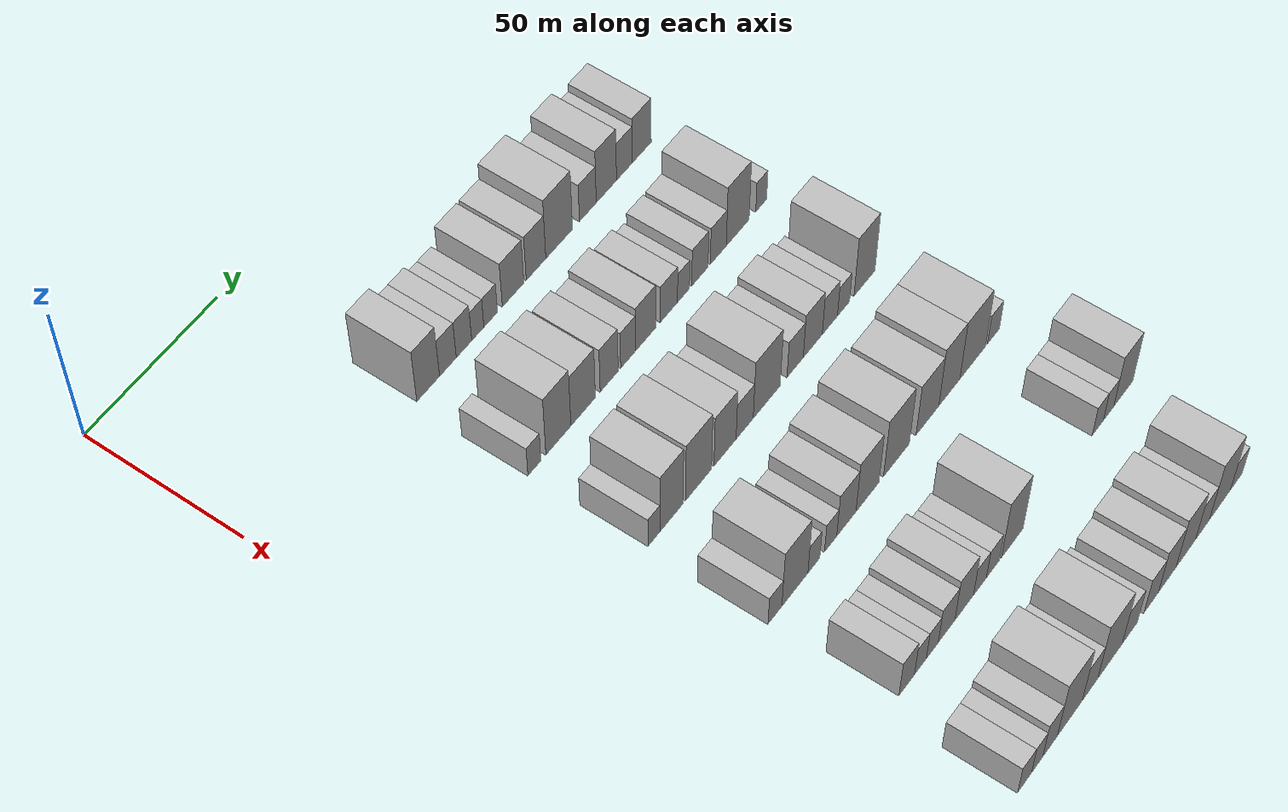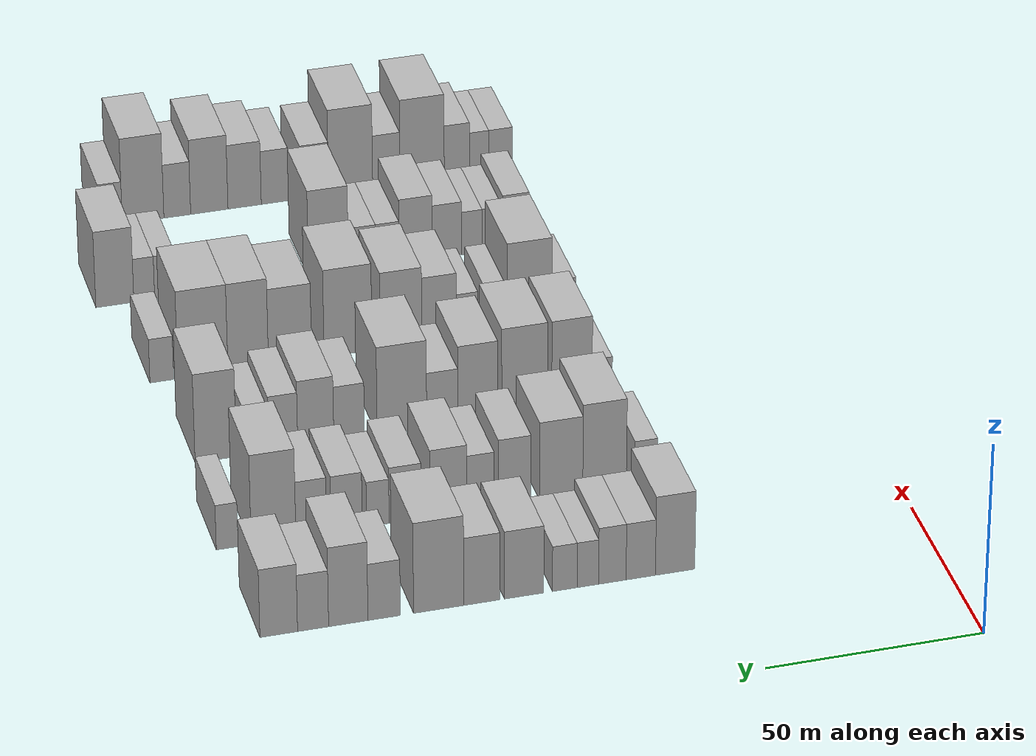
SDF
<sdf version="1.6">
 <world name="default">
  <model name="building_70">
   <static>1</static>
   <pose>50.0000 58.6767 0 0.000000 0.000000 0.000000</pose>
   <link name="link">
    <pose>0 0 10.50 0 0 0</pose>
    <collision name="collision"><geometry><box><size>20.0000 9.0922 21.0000</size></box></geometry></collision>
    <visual name="visual">
     <cast_shadows>0</cast_shadows>
     <geometry><box><size>20.0000 9.0922 21.0000</size></box></geometry>
     <material>
      <script>
       <uri>model://HANNAS_wall/materials/scripts</uri>
       <uri>model://HANNAS_wall/materials/textures</uri>
       <name>vrc/HANNAS_wall</name>
      </script>
     </material>
    </visual>
   </link>
  </model>
  <model name="building_71">
   <static>1</static>
   <pose>50.0000 66.6062 0 0.000000 0.000000 0.000000</pose>
   <link name="link">
    <pose>0 0 7.50 0 0 0</pose>
    <collision name="collision"><geometry><box><size>20.0000 6.7668 15.0000</size></box></geometry></collision>
    <visual name="visual">
     <cast_shadows>0</cast_shadows>
     <geometry><box><size>20.0000 6.7668 15.0000</size></box></geometry>
     <material>
      <script>
       <uri>model://HANNAS_wall/materials/scripts</uri>
       <uri>model://HANNAS_wall/materials/textures</uri>
       <name>vrc/HANNAS_wall</name>
      </script>
     </material>
    </visual>
   </link>
  </model>
  <model name="building_72">
   <static>1</static>
   <pose>50.0000 73.1449 0 0.000000 0.000000 0.000000</pose>
   <link name="link">
    <pose>0 0 7.50 0 0 0</pose>
    <collision name="collision"><geometry><box><size>20.0000 6.3106 15.0000</size></box></geometry></collision>
    <visual name="visual">
     <cast_shadows>0</cast_shadows>
     <geometry><box><size>20.0000 6.3106 15.0000</size></box></geometry>
     <material>
      <script>
       <uri>model://HANNAS_wall/materials/scripts</uri>
       <uri>model://HANNAS_wall/materials/textures</uri>
       <name>vrc/HANNAS_wall</name>
      </script>
     </material>
    </visual>
   </link>
  </model>
  <model name="building_73">
   <static>1</static>
   <pose>50.0000 78.7843 0 0.000000 0.000000 0.000000</pose>
   <link name="link">
    <pose>0 0 6.00 0 0 0</pose>
    <collision name="collision"><geometry><box><size>20.0000 4.9681 12.0000</size></box></geometry></collision>
    <visual name="visual">
     <cast_shadows>0</cast_shadows>
     <geometry><box><size>20.0000 4.9681 12.0000</size></box></geometry>
     <material>
      <script>
       <uri>model://HANNAS_wall/materials/scripts</uri>
       <uri>model://HANNAS_wall/materials/textures</uri>
       <name>vrc/HANNAS_wall</name>
      </script>
     </material>
    </visual>
   </link>
  </model>
  <model name="building_74">
   <static>1</static>
   <pose>50.0000 84.0852 0 0.000000 0.000000 0.000000</pose>
   <link name="link">
    <pose>0 0 6.00 0 0 0</pose>
    <collision name="collision"><geometry><box><size>20.0000 5.6336 12.0000</size></box></geometry></collision>
    <visual name="visual">
     <cast_shadows>0</cast_shadows>
     <geometry><box><size>20.0000 5.6336 12.0000</size></box></geometry>
     <material>
      <script>
       <uri>model://HANNAS_wall/materials/scripts</uri>
       <uri>model://HANNAS_wall/materials/textures</uri>
       <name>vrc/HANNAS_wall</name>
      </script>
     </material>
    </visual>
   </link>
  </model>
  <model name="building_75">
   <static>1</static>
   <pose>50.0000 93.3991 0 0.000000 0.000000 0.000000</pose>
   <link name="link">
    <pose>0 0 9.00 0 0 0</pose>
    <collision name="collision"><geometry><box><size>20.0000 8.9942 18.0000</size></box></geometry></collision>
    <visual name="visual">
     <cast_shadows>0</cast_shadows>
     <geometry><box><size>20.0000 8.9942 18.0000</size></box></geometry>
     <material>
      <script>
       <uri>model://HANNAS_wall/materials/scripts</uri>
       <uri>model://HANNAS_wall/materials/textures</uri>
       <name>vrc/HANNAS_wall</name>
      </script>
     </material>
    </visual>
   </link>
  </model>
  <model name="building_76">
   <static>1</static>
   <pose>50.0000 103.0334 0 0.000000 0.000000 0.000000</pose>
   <link name="link">
    <pose>0 0 9.00 0 0 0</pose>
    <collision name="collision"><geometry><box><size>20.0000 8.2745 18.0000</size></box></geometry></collision>
    <visual name="visual">
     <cast_shadows>0</cast_shadows>
     <geometry><box><size>20.0000 8.2745 18.0000</size></box></geometry>
     <material>
      <script>
       <uri>model://HANNAS_wall/materials/scripts</uri>
       <uri>model://HANNAS_wall/materials/textures</uri>
       <name>vrc/HANNAS_wall</name>
      </script>
     </material>
    </visual>
   </link>
  </model>
  <model name="building_77">
   <static>1</static>
   <pose>50.0000 112.8705 0 0.000000 0.000000 0.000000</pose>
   <link name="link">
    <pose>0 0 12.00 0 0 0</pose>
    <collision name="collision"><geometry><box><size>20.0000 11.3996 24.0000</size></box></geometry></collision>
    <visual name="visual">
     <cast_shadows>0</cast_shadows>
     <geometry><box><size>20.0000 11.3996 24.0000</size></box></geometry>
     <material>
      <script>
       <uri>model://HANNAS_wall/materials/scripts</uri>
       <uri>model://HANNAS_wall/materials/textures</uri>
       <name>vrc/HANNAS_wall</name>
      </script>
     </material>
    </visual>
   </link>
  </model>
  <model name="building_78">
   <static>1</static>
   <pose>50.0000 125.2373 0 0.000000 0.000000 0.000000</pose>
   <link name="link">
    <pose>0 0 7.50 0 0 0</pose>
    <collision name="collision"><geometry><box><size>20.0000 7.3340 15.0000</size></box></geometry></collision>
    <visual name="visual">
     <cast_shadows>0</cast_shadows>
     <geometry><box><size>20.0000 7.3340 15.0000</size></box></geometry>
     <material>
      <script>
       <uri>model://HANNAS_wall/materials/scripts</uri>
       <uri>model://HANNAS_wall/materials/textures</uri>
       <name>vrc/HANNAS_wall</name>
      </script>
     </material>
    </visual>
   </link>
  </model>
  <model name="building_79">
   <static>1</static>
   <pose>50.0000 133.3471 0 0.000000 0.000000 0.000000</pose>
   <link name="link">
    <pose>0 0 10.50 0 0 0</pose>
    <collision name="collision"><geometry><box><size>20.0000 8.8856 21.0000</size></box></geometry></collision>
    <visual name="visual">
     <cast_shadows>0</cast_shadows>
     <geometry><box><size>20.0000 8.8856 21.0000</size></box></geometry>
     <material>
      <script>
       <uri>model://HANNAS_wall/materials/scripts</uri>
       <uri>model://HANNAS_wall/materials/textures</uri>
       <name>vrc/HANNAS_wall</name>
      </script>
     </material>
    </visual>
   </link>
  </model>
  <model name="building_80">
   <static>1</static>
   <pose>50.0000 141.2884 0 0.000000 0.000000 0.000000</pose>
   <link name="link">
    <pose>0 0 7.50 0 0 0</pose>
    <collision name="collision"><geometry><box><size>20.0000 6.9968 15.0000</size></box></geometry></collision>
    <visual name="visual">
     <cast_shadows>0</cast_shadows>
     <geometry><box><size>20.0000 6.9968 15.0000</size></box></geometry>
     <material>
      <script>
       <uri>model://HANNAS_wall/materials/scripts</uri>
       <uri>model://HANNAS_wall/materials/textures</uri>
       <name>vrc/HANNAS_wall</name>
      </script>
     </material>
    </visual>
   </link>
  </model>
  <model name="building_81">
   <static>1</static>
   <pose>50.0000 149.0124 0 0.000000 0.000000 0.000000</pose>
   <link name="link">
    <pose>0 0 9.00 0 0 0</pose>
    <collision name="collision"><geometry><box><size>20.0000 8.4512 18.0000</size></box></geometry></collision>
    <visual name="visual">
     <cast_shadows>0</cast_shadows>
     <geometry><box><size>20.0000 8.4512 18.0000</size></box></geometry>
     <material>
      <script>
       <uri>model://HANNAS_wall/materials/scripts</uri>
       <uri>model://HANNAS_wall/materials/textures</uri>
       <name>vrc/HANNAS_wall</name>
      </script>
     </material>
    </visual>
   </link>
  </model>
  <model name="building_201">
   <static>1</static>
   <pose>85.0000 55.2274 0 0.000000 0.000000 0.000000</pose>
   <link name="link">
    <pose>0 0 6.00 0 0 0</pose>
    <collision name="collision"><geometry><box><size>20.0000 5.2584 12.0000</size></box></geometry></collision>
    <visual name="visual">
     <cast_shadows>0</cast_shadows>
     <geometry><box><size>20.0000 5.2584 12.0000</size></box></geometry>
     <material>
      <script>
       <uri>model://HANNAS_wall/materials/scripts</uri>
       <uri>model://HANNAS_wall/materials/textures</uri>
       <name>vrc/HANNAS_wall</name>
      </script>
     </material>
    </visual>
   </link>
  </model>
  <model name="building_202">
   <static>1</static>
   <pose>85.0000 64.9764 0 0.000000 0.000000 0.000000</pose>
   <link name="link">
    <pose>0 0 12.00 0 0 0</pose>
    <collision name="collision"><geometry><box><size>20.0000 10.2395 24.0000</size></box></geometry></collision>
    <visual name="visual">
     <cast_shadows>0</cast_shadows>
     <geometry><box><size>20.0000 10.2395 24.0000</size></box></geometry>
     <material>
      <script>
       <uri>model://HANNAS_wall/materials/scripts</uri>
       <uri>model://HANNAS_wall/materials/textures</uri>
       <name>vrc/HANNAS_wall</name>
      </script>
     </material>
    </visual>
   </link>
  </model>
  <model name="building_203">
   <static>1</static>
   <pose>85.0000 75.1678 0 0.000000 0.000000 0.000000</pose>
   <link name="link">
    <pose>0 0 10.50 0 0 0</pose>
    <collision name="collision"><geometry><box><size>20.0000 10.1433 21.0000</size></box></geometry></collision>
    <visual name="visual">
     <cast_shadows>0</cast_shadows>
     <geometry><box><size>20.0000 10.1433 21.0000</size></box></geometry>
     <material>
      <script>
       <uri>model://HANNAS_wall/materials/scripts</uri>
       <uri>model://HANNAS_wall/materials/textures</uri>
       <name>vrc/HANNAS_wall</name>
      </script>
     </material>
    </visual>
   </link>
  </model>
  <model name="building_204">
   <static>1</static>
   <pose>85.0000 86.0422 0 0.000000 0.000000 0.000000</pose>
   <link name="link">
    <pose>0 0 9.00 0 0 0</pose>
    <collision name="collision"><geometry><box><size>20.0000 7.6054 18.0000</size></box></geometry></collision>
    <visual name="visual">
     <cast_shadows>0</cast_shadows>
     <geometry><box><size>20.0000 7.6054 18.0000</size></box></geometry>
     <material>
      <script>
       <uri>model://HANNAS_wall/materials/scripts</uri>
       <uri>model://HANNAS_wall/materials/textures</uri>
       <name>vrc/HANNAS_wall</name>
      </script>
     </material>
    </visual>
   </link>
  </model>
  <model name="building_205">
   <static>1</static>
   <pose>85.0000 94.0037 0 0.000000 0.000000 0.000000</pose>
   <link name="link">
    <pose>0 0 7.50 0 0 0</pose>
    <collision name="collision"><geometry><box><size>20.0000 6.3178 15.0000</size></box></geometry></collision>
    <visual name="visual">
     <cast_shadows>0</cast_shadows>
     <geometry><box><size>20.0000 6.3178 15.0000</size></box></geometry>
     <material>
      <script>
       <uri>model://HANNAS_wall/materials/scripts</uri>
       <uri>model://HANNAS_wall/materials/textures</uri>
       <name>vrc/HANNAS_wall</name>
      </script>
     </material>
    </visual>
   </link>
  </model>
  <model name="building_206">
   <static>1</static>
   <pose>85.0000 101.4666 0 0.000000 0.000000 0.000000</pose>
   <link name="link">
    <pose>0 0 9.00 0 0 0</pose>
    <collision name="collision"><geometry><box><size>20.0000 8.6080 18.0000</size></box></geometry></collision>
    <visual name="visual">
     <cast_shadows>0</cast_shadows>
     <geometry><box><size>20.0000 8.6080 18.0000</size></box></geometry>
     <material>
      <script>
       <uri>model://HANNAS_wall/materials/scripts</uri>
       <uri>model://HANNAS_wall/materials/textures</uri>
       <name>vrc/HANNAS_wall</name>
      </script>
     </material>
    </visual>
   </link>
  </model>
  <model name="building_207">
   <static>1</static>
   <pose>85.0000 111.5068 0 0.000000 0.000000 0.000000</pose>
   <link name="link">
    <pose>0 0 7.50 0 0 0</pose>
    <collision name="collision"><geometry><box><size>20.0000 7.4723 15.0000</size></box></geometry></collision>
    <visual name="visual">
     <cast_shadows>0</cast_shadows>
     <geometry><box><size>20.0000 7.4723 15.0000</size></box></geometry>
     <material>
      <script>
       <uri>model://HANNAS_wall/materials/scripts</uri>
       <uri>model://HANNAS_wall/materials/textures</uri>
       <name>vrc/HANNAS_wall</name>
      </script>
     </material>
    </visual>
   </link>
  </model>
  <model name="building_208">
   <static>1</static>
   <pose>85.0000 117.8566 0 0.000000 0.000000 0.000000</pose>
   <link name="link">
    <pose>0 0 6.00 0 0 0</pose>
    <collision name="collision"><geometry><box><size>20.0000 5.2273 12.0000</size></box></geometry></collision>
    <visual name="visual">
     <cast_shadows>0</cast_shadows>
     <geometry><box><size>20.0000 5.2273 12.0000</size></box></geometry>
     <material>
      <script>
       <uri>model://HANNAS_wall/materials/scripts</uri>
       <uri>model://HANNAS_wall/materials/textures</uri>
       <name>vrc/HANNAS_wall</name>
      </script>
     </material>
    </visual>
   </link>
  </model>
  <model name="building_209">
   <static>1</static>
   <pose>85.0000 125.0621 0 0.000000 0.000000 0.000000</pose>
   <link name="link">
    <pose>0 0 7.50 0 0 0</pose>
    <collision name="collision"><geometry><box><size>20.0000 7.1839 15.0000</size></box></geometry></collision>
    <visual name="visual">
     <cast_shadows>0</cast_shadows>
     <geometry><box><size>20.0000 7.1839 15.0000</size></box></geometry>
     <material>
      <script>
       <uri>model://HANNAS_wall/materials/scripts</uri>
       <uri>model://HANNAS_wall/materials/textures</uri>
       <name>vrc/HANNAS_wall</name>
      </script>
     </material>
    </visual>
   </link>
  </model>
  <model name="building_210">
   <static>1</static>
   <pose>85.0000 133.2160 0 0.000000 0.000000 0.000000</pose>
   <link name="link">
    <pose>0 0 7.50 0 0 0</pose>
    <collision name="collision"><geometry><box><size>20.0000 7.1237 15.0000</size></box></geometry></collision>
    <visual name="visual">
     <cast_shadows>0</cast_shadows>
     <geometry><box><size>20.0000 7.1237 15.0000</size></box></geometry>
     <material>
      <script>
       <uri>model://HANNAS_wall/materials/scripts</uri>
       <uri>model://HANNAS_wall/materials/textures</uri>
       <name>vrc/HANNAS_wall</name>
      </script>
     </material>
    </visual>
   </link>
  </model>
  <model name="building_211">
   <static>1</static>
   <pose>85.0000 141.9162 0 0.000000 0.000000 0.000000</pose>
   <link name="link">
    <pose>0 0 12.00 0 0 0</pose>
    <collision name="collision"><geometry><box><size>20.0000 10.2767 24.0000</size></box></geometry></collision>
    <visual name="visual">
     <cast_shadows>0</cast_shadows>
     <geometry><box><size>20.0000 10.2767 24.0000</size></box></geometry>
     <material>
      <script>
       <uri>model://HANNAS_wall/materials/scripts</uri>
       <uri>model://HANNAS_wall/materials/textures</uri>
       <name>vrc/HANNAS_wall</name>
      </script>
     </material>
    </visual>
   </link>
  </model>
  <model name="building_212">
   <static>1</static>
   <pose>85.0000 152.5432 0 0.000000 0.000000 0.000000</pose>
   <link name="link">
    <pose>0 0 6.00 0 0 0</pose>
    <collision name="collision"><geometry><box><size>20.0000 4.9773 12.0000</size></box></geometry></collision>
    <visual name="visual">
     <cast_shadows>0</cast_shadows>
     <geometry><box><size>20.0000 4.9773 12.0000</size></box></geometry>
     <material>
      <script>
       <uri>model://HANNAS_wall/materials/scripts</uri>
       <uri>model://HANNAS_wall/materials/textures</uri>
       <name>vrc/HANNAS_wall</name>
      </script>
     </material>
    </visual>
   </link>
  </model>
  <model name="building_330">
   <static>1</static>
   <pose>120.0000 55.6101 0 0.000000 0.000000 0.000000</pose>
   <link name="link">
    <pose>0 0 6.00 0 0 0</pose>
    <collision name="collision"><geometry><box><size>20.0000 4.8382 12.0000</size></box></geometry></collision>
    <visual name="visual">
     <cast_shadows>0</cast_shadows>
     <geometry><box><size>20.0000 4.8382 12.0000</size></box></geometry>
     <material>
      <script>
       <uri>model://HANNAS_wall/materials/scripts</uri>
       <uri>model://HANNAS_wall/materials/textures</uri>
       <name>vrc/HANNAS_wall</name>
      </script>
     </material>
    </visual>
   </link>
  </model>
  <model name="building_331">
   <static>1</static>
   <pose>120.0000 62.8527 0 0.000000 0.000000 0.000000</pose>
   <link name="link">
    <pose>0 0 12.00 0 0 0</pose>
    <collision name="collision"><geometry><box><size>20.0000 9.6471 24.0000</size></box></geometry></collision>
    <visual name="visual">
     <cast_shadows>0</cast_shadows>
     <geometry><box><size>20.0000 9.6471 24.0000</size></box></geometry>
     <material>
      <script>
       <uri>model://HANNAS_wall/materials/scripts</uri>
       <uri>model://HANNAS_wall/materials/textures</uri>
       <name>vrc/HANNAS_wall</name>
      </script>
     </material>
    </visual>
   </link>
  </model>
  <model name="building_332">
   <static>1</static>
   <pose>120.0000 74.1472 0 0.000000 0.000000 0.000000</pose>
   <link name="link">
    <pose>0 0 12.00 0 0 0</pose>
    <collision name="collision"><geometry><box><size>20.0000 10.9417 24.0000</size></box></geometry></collision>
    <visual name="visual">
     <cast_shadows>0</cast_shadows>
     <geometry><box><size>20.0000 10.9417 24.0000</size></box></geometry>
     <material>
      <script>
       <uri>model://HANNAS_wall/materials/scripts</uri>
       <uri>model://HANNAS_wall/materials/textures</uri>
       <name>vrc/HANNAS_wall</name>
      </script>
     </material>
    </visual>
   </link>
  </model>
  <model name="building_333">
   <static>1</static>
   <pose>120.0000 85.3458 0 0.000000 0.000000 0.000000</pose>
   <link name="link">
    <pose>0 0 10.50 0 0 0</pose>
    <collision name="collision"><geometry><box><size>20.0000 9.4556 21.0000</size></box></geometry></collision>
    <visual name="visual">
     <cast_shadows>0</cast_shadows>
     <geometry><box><size>20.0000 9.4556 21.0000</size></box></geometry>
     <material>
      <script>
       <uri>model://HANNAS_wall/materials/scripts</uri>
       <uri>model://HANNAS_wall/materials/textures</uri>
       <name>vrc/HANNAS_wall</name>
      </script>
     </material>
    </visual>
   </link>
  </model>
  <model name="building_334">
   <static>1</static>
   <pose>120.0000 93.7713 0 0.000000 0.000000 0.000000</pose>
   <link name="link">
    <pose>0 0 7.50 0 0 0</pose>
    <collision name="collision"><geometry><box><size>20.0000 7.3954 15.0000</size></box></geometry></collision>
    <visual name="visual">
     <cast_shadows>0</cast_shadows>
     <geometry><box><size>20.0000 7.3954 15.0000</size></box></geometry>
     <material>
      <script>
       <uri>model://HANNAS_wall/materials/scripts</uri>
       <uri>model://HANNAS_wall/materials/textures</uri>
       <name>vrc/HANNAS_wall</name>
      </script>
     </material>
    </visual>
   </link>
  </model>
  <model name="building_335">
   <static>1</static>
   <pose>120.0000 103.3422 0 0.000000 0.000000 0.000000</pose>
   <link name="link">
    <pose>0 0 12.00 0 0 0</pose>
    <collision name="collision"><geometry><box><size>20.0000 11.7464 24.0000</size></box></geometry></collision>
    <visual name="visual">
     <cast_shadows>0</cast_shadows>
     <geometry><box><size>20.0000 11.7464 24.0000</size></box></geometry>
     <material>
      <script>
       <uri>model://HANNAS_wall/materials/scripts</uri>
       <uri>model://HANNAS_wall/materials/textures</uri>
       <name>vrc/HANNAS_wall</name>
      </script>
     </material>
    </visual>
   </link>
  </model>
  <model name="building_336">
   <static>1</static>
   <pose>120.0000 115.8312 0 0.000000 0.000000 0.000000</pose>
   <link name="link">
    <pose>0 0 7.50 0 0 0</pose>
    <collision name="collision"><geometry><box><size>20.0000 7.2315 15.0000</size></box></geometry></collision>
    <visual name="visual">
     <cast_shadows>0</cast_shadows>
     <geometry><box><size>20.0000 7.2315 15.0000</size></box></geometry>
     <material>
      <script>
       <uri>model://HANNAS_wall/materials/scripts</uri>
       <uri>model://HANNAS_wall/materials/textures</uri>
       <name>vrc/HANNAS_wall</name>
      </script>
     </material>
    </visual>
   </link>
  </model>
  <model name="building_337">
   <static>1</static>
   <pose>120.0000 123.6975 0 0.000000 0.000000 0.000000</pose>
   <link name="link">
    <pose>0 0 9.00 0 0 0</pose>
    <collision name="collision"><geometry><box><size>20.0000 8.5012 18.0000</size></box></geometry></collision>
    <visual name="visual">
     <cast_shadows>0</cast_shadows>
     <geometry><box><size>20.0000 8.5012 18.0000</size></box></geometry>
     <material>
      <script>
       <uri>model://HANNAS_wall/materials/scripts</uri>
       <uri>model://HANNAS_wall/materials/textures</uri>
       <name>vrc/HANNAS_wall</name>
      </script>
     </material>
    </visual>
   </link>
  </model>
  <model name="building_338">
   <static>1</static>
   <pose>120.0000 131.3872 0 0.000000 0.000000 0.000000</pose>
   <link name="link">
    <pose>0 0 7.50 0 0 0</pose>
    <collision name="collision"><geometry><box><size>20.0000 6.8782 15.0000</size></box></geometry></collision>
    <visual name="visual">
     <cast_shadows>0</cast_shadows>
     <geometry><box><size>20.0000 6.8782 15.0000</size></box></geometry>
     <material>
      <script>
       <uri>model://HANNAS_wall/materials/scripts</uri>
       <uri>model://HANNAS_wall/materials/textures</uri>
       <name>vrc/HANNAS_wall</name>
      </script>
     </material>
    </visual>
   </link>
  </model>
  <model name="building_339">
   <static>1</static>
   <pose>120.0000 137.5890 0 0.000000 0.000000 0.000000</pose>
   <link name="link">
    <pose>0 0 6.00 0 0 0</pose>
    <collision name="collision"><geometry><box><size>20.0000 5.5253 12.0000</size></box></geometry></collision>
    <visual name="visual">
     <cast_shadows>0</cast_shadows>
     <geometry><box><size>20.0000 5.5253 12.0000</size></box></geometry>
     <material>
      <script>
       <uri>model://HANNAS_wall/materials/scripts</uri>
       <uri>model://HANNAS_wall/materials/textures</uri>
       <name>vrc/HANNAS_wall</name>
      </script>
     </material>
    </visual>
   </link>
  </model>
  <model name="building_340">
   <static>1</static>
   <pose>120.0000 147.1771 0 0.000000 0.000000 0.000000</pose>
   <link name="link">
    <pose>0 0 12.00 0 0 0</pose>
    <collision name="collision"><geometry><box><size>20.0000 9.6509 24.0000</size></box></geometry></collision>
    <visual name="visual">
     <cast_shadows>0</cast_shadows>
     <geometry><box><size>20.0000 9.6509 24.0000</size></box></geometry>
     <material>
      <script>
       <uri>model://HANNAS_wall/materials/scripts</uri>
       <uri>model://HANNAS_wall/materials/textures</uri>
       <name>vrc/HANNAS_wall</name>
      </script>
     </material>
    </visual>
   </link>
  </model>
  <model name="building_456">
   <static>1</static>
   <pose>155.0000 54.9979 0 0.000000 0.000000 0.000000</pose>
   <link name="link">
    <pose>0 0 6.00 0 0 0</pose>
    <collision name="collision"><geometry><box><size>20.0000 5.8088 12.0000</size></box></geometry></collision>
    <visual name="visual">
     <cast_shadows>0</cast_shadows>
     <geometry><box><size>20.0000 5.8088 12.0000</size></box></geometry>
     <material>
      <script>
       <uri>model://HANNAS_wall/materials/scripts</uri>
       <uri>model://HANNAS_wall/materials/textures</uri>
       <name>vrc/HANNAS_wall</name>
      </script>
     </material>
    </visual>
   </link>
  </model>
  <model name="building_457">
   <static>1</static>
   <pose>155.0000 63.3965 0 0.000000 0.000000 0.000000</pose>
   <link name="link">
    <pose>0 0 12.00 0 0 0</pose>
    <collision name="collision"><geometry><box><size>20.0000 10.9884 24.0000</size></box></geometry></collision>
    <visual name="visual">
     <cast_shadows>0</cast_shadows>
     <geometry><box><size>20.0000 10.9884 24.0000</size></box></geometry>
     <material>
      <script>
       <uri>model://HANNAS_wall/materials/scripts</uri>
       <uri>model://HANNAS_wall/materials/textures</uri>
       <name>vrc/HANNAS_wall</name>
      </script>
     </material>
    </visual>
   </link>
  </model>
  <model name="building_458">
   <static>1</static>
   <pose>155.0000 71.4240 0 0.000000 0.000000 0.000000</pose>
   <link name="link">
    <pose>0 0 6.00 0 0 0</pose>
    <collision name="collision"><geometry><box><size>20.0000 5.0667 12.0000</size></box></geometry></collision>
    <visual name="visual">
     <cast_shadows>0</cast_shadows>
     <geometry><box><size>20.0000 5.0667 12.0000</size></box></geometry>
     <material>
      <script>
       <uri>model://HANNAS_wall/materials/scripts</uri>
       <uri>model://HANNAS_wall/materials/textures</uri>
       <name>vrc/HANNAS_wall</name>
      </script>
     </material>
    </visual>
   </link>
  </model>
  <model name="building_459">
   <static>1</static>
   <pose>155.0000 78.5914 0 0.000000 0.000000 0.000000</pose>
   <link name="link">
    <pose>0 0 6.00 0 0 0</pose>
    <collision name="collision"><geometry><box><size>20.0000 5.2681 12.0000</size></box></geometry></collision>
    <visual name="visual">
     <cast_shadows>0</cast_shadows>
     <geometry><box><size>20.0000 5.2681 12.0000</size></box></geometry>
     <material>
      <script>
       <uri>model://HANNAS_wall/materials/scripts</uri>
       <uri>model://HANNAS_wall/materials/textures</uri>
       <name>vrc/HANNAS_wall</name>
      </script>
     </material>
    </visual>
   </link>
  </model>
  <model name="building_460">
   <static>1</static>
   <pose>155.0000 85.4082 0 0.000000 0.000000 0.000000</pose>
   <link name="link">
    <pose>0 0 9.00 0 0 0</pose>
    <collision name="collision"><geometry><box><size>20.0000 8.3654 18.0000</size></box></geometry></collision>
    <visual name="visual">
     <cast_shadows>0</cast_shadows>
     <geometry><box><size>20.0000 8.3654 18.0000</size></box></geometry>
     <material>
      <script>
       <uri>model://HANNAS_wall/materials/scripts</uri>
       <uri>model://HANNAS_wall/materials/textures</uri>
       <name>vrc/HANNAS_wall</name>
      </script>
     </material>
    </visual>
   </link>
  </model>
  <model name="building_461">
   <static>1</static>
   <pose>155.0000 94.6259 0 0.000000 0.000000 0.000000</pose>
   <link name="link">
    <pose>0 0 10.50 0 0 0</pose>
    <collision name="collision"><geometry><box><size>20.0000 10.0701 21.0000</size></box></geometry></collision>
    <visual name="visual">
     <cast_shadows>0</cast_shadows>
     <geometry><box><size>20.0000 10.0701 21.0000</size></box></geometry>
     <material>
      <script>
       <uri>model://HANNAS_wall/materials/scripts</uri>
       <uri>model://HANNAS_wall/materials/textures</uri>
       <name>vrc/HANNAS_wall</name>
      </script>
     </material>
    </visual>
   </link>
  </model>
  <model name="building_462">
   <static>1</static>
   <pose>155.0000 107.4367 0 0.000000 0.000000 0.000000</pose>
   <link name="link">
    <pose>0 0 12.00 0 0 0</pose>
    <collision name="collision"><geometry><box><size>20.0000 11.5514 24.0000</size></box></geometry></collision>
    <visual name="visual">
     <cast_shadows>0</cast_shadows>
     <geometry><box><size>20.0000 11.5514 24.0000</size></box></geometry>
     <material>
      <script>
       <uri>model://HANNAS_wall/materials/scripts</uri>
       <uri>model://HANNAS_wall/materials/textures</uri>
       <name>vrc/HANNAS_wall</name>
      </script>
     </material>
    </visual>
   </link>
  </model>
  <model name="building_463">
   <static>1</static>
   <pose>155.0000 121.3976 0 0.000000 0.000000 0.000000</pose>
   <link name="link">
    <pose>0 0 10.50 0 0 0</pose>
    <collision name="collision"><geometry><box><size>20.0000 10.3705 21.0000</size></box></geometry></collision>
    <visual name="visual">
     <cast_shadows>0</cast_shadows>
     <geometry><box><size>20.0000 10.3705 21.0000</size></box></geometry>
     <material>
      <script>
       <uri>model://HANNAS_wall/materials/scripts</uri>
       <uri>model://HANNAS_wall/materials/textures</uri>
       <name>vrc/HANNAS_wall</name>
      </script>
     </material>
    </visual>
   </link>
  </model>
  <model name="building_464">
   <static>1</static>
   <pose>155.0000 131.4315 0 0.000000 0.000000 0.000000</pose>
   <link name="link">
    <pose>0 0 12.00 0 0 0</pose>
    <collision name="collision"><geometry><box><size>20.0000 9.6973 24.0000</size></box></geometry></collision>
    <visual name="visual">
     <cast_shadows>0</cast_shadows>
     <geometry><box><size>20.0000 9.6973 24.0000</size></box></geometry>
     <material>
      <script>
       <uri>model://HANNAS_wall/materials/scripts</uri>
       <uri>model://HANNAS_wall/materials/textures</uri>
       <name>vrc/HANNAS_wall</name>
      </script>
     </material>
    </visual>
   </link>
  </model>
  <model name="building_465">
   <static>1</static>
   <pose>155.0000 142.2470 0 0.000000 0.000000 0.000000</pose>
   <link name="link">
    <pose>0 0 12.00 0 0 0</pose>
    <collision name="collision"><geometry><box><size>20.0000 11.9337 24.0000</size></box></geometry></collision>
    <visual name="visual">
     <cast_shadows>0</cast_shadows>
     <geometry><box><size>20.0000 11.9337 24.0000</size></box></geometry>
     <material>
      <script>
       <uri>model://HANNAS_wall/materials/scripts</uri>
       <uri>model://HANNAS_wall/materials/textures</uri>
       <name>vrc/HANNAS_wall</name>
      </script>
     </material>
    </visual>
   </link>
  </model>
  <model name="building_466">
   <static>1</static>
   <pose>155.0000 152.0490 0 0.000000 0.000000 0.000000</pose>
   <link name="link">
    <pose>0 0 6.00 0 0 0</pose>
    <collision name="collision"><geometry><box><size>20.0000 5.6703 12.0000</size></box></geometry></collision>
    <visual name="visual">
     <cast_shadows>0</cast_shadows>
     <geometry><box><size>20.0000 5.6703 12.0000</size></box></geometry>
     <material>
      <script>
       <uri>model://HANNAS_wall/materials/scripts</uri>
       <uri>model://HANNAS_wall/materials/textures</uri>
       <name>vrc/HANNAS_wall</name>
      </script>
     </material>
    </visual>
   </link>
  </model>
  <model name="building_587">
   <static>1</static>
   <pose>190.0000 57.2237 0 0.000000 0.000000 0.000000</pose>
   <link name="link">
    <pose>0 0 7.50 0 0 0</pose>
    <collision name="collision"><geometry><box><size>20.0000 6.6227 15.0000</size></box></geometry></collision>
    <visual name="visual">
     <cast_shadows>0</cast_shadows>
     <geometry><box><size>20.0000 6.6227 15.0000</size></box></geometry>
     <material>
      <script>
       <uri>model://HANNAS_wall/materials/scripts</uri>
       <uri>model://HANNAS_wall/materials/textures</uri>
       <name>vrc/HANNAS_wall</name>
      </script>
     </material>
    </visual>
   </link>
  </model>
  <model name="building_588">
   <static>1</static>
   <pose>190.0000 63.0645 0 0.000000 0.000000 0.000000</pose>
   <link name="link">
    <pose>0 0 6.00 0 0 0</pose>
    <collision name="collision"><geometry><box><size>20.0000 5.0589 12.0000</size></box></geometry></collision>
    <visual name="visual">
     <cast_shadows>0</cast_shadows>
     <geometry><box><size>20.0000 5.0589 12.0000</size></box></geometry>
     <material>
      <script>
       <uri>model://HANNAS_wall/materials/scripts</uri>
       <uri>model://HANNAS_wall/materials/textures</uri>
       <name>vrc/HANNAS_wall</name>
      </script>
     </material>
    </visual>
   </link>
  </model>
  <model name="building_589">
   <static>1</static>
   <pose>190.0000 68.1742 0 0.000000 0.000000 0.000000</pose>
   <link name="link">
    <pose>0 0 6.00 0 0 0</pose>
    <collision name="collision"><geometry><box><size>20.0000 5.1604 12.0000</size></box></geometry></collision>
    <visual name="visual">
     <cast_shadows>0</cast_shadows>
     <geometry><box><size>20.0000 5.1604 12.0000</size></box></geometry>
     <material>
      <script>
       <uri>model://HANNAS_wall/materials/scripts</uri>
       <uri>model://HANNAS_wall/materials/textures</uri>
       <name>vrc/HANNAS_wall</name>
      </script>
     </material>
    </visual>
   </link>
  </model>
  <model name="building_590">
   <static>1</static>
   <pose>190.0000 74.3790 0 0.000000 0.000000 0.000000</pose>
   <link name="link">
    <pose>0 0 7.50 0 0 0</pose>
    <collision name="collision"><geometry><box><size>20.0000 7.2492 15.0000</size></box></geometry></collision>
    <visual name="visual">
     <cast_shadows>0</cast_shadows>
     <geometry><box><size>20.0000 7.2492 15.0000</size></box></geometry>
     <material>
      <script>
       <uri>model://HANNAS_wall/materials/scripts</uri>
       <uri>model://HANNAS_wall/materials/textures</uri>
       <name>vrc/HANNAS_wall</name>
      </script>
     </material>
    </visual>
   </link>
  </model>
  <model name="building_591">
   <static>1</static>
   <pose>190.0000 82.1027 0 0.000000 0.000000 0.000000</pose>
   <link name="link">
    <pose>0 0 9.00 0 0 0</pose>
    <collision name="collision"><geometry><box><size>20.0000 8.1981 18.0000</size></box></geometry></collision>
    <visual name="visual">
     <cast_shadows>0</cast_shadows>
     <geometry><box><size>20.0000 8.1981 18.0000</size></box></geometry>
     <material>
      <script>
       <uri>model://HANNAS_wall/materials/scripts</uri>
       <uri>model://HANNAS_wall/materials/textures</uri>
       <name>vrc/HANNAS_wall</name>
      </script>
     </material>
    </visual>
   </link>
  </model>
  <model name="building_592">
   <static>1</static>
   <pose>190.0000 89.0856 0 0.000000 0.000000 0.000000</pose>
   <link name="link">
    <pose>0 0 6.00 0 0 0</pose>
    <collision name="collision"><geometry><box><size>20.0000 5.7677 12.0000</size></box></geometry></collision>
    <visual name="visual">
     <cast_shadows>0</cast_shadows>
     <geometry><box><size>20.0000 5.7677 12.0000</size></box></geometry>
     <material>
      <script>
       <uri>model://HANNAS_wall/materials/scripts</uri>
       <uri>model://HANNAS_wall/materials/textures</uri>
       <name>vrc/HANNAS_wall</name>
      </script>
     </material>
    </visual>
   </link>
  </model>
  <model name="building_593">
   <static>1</static>
   <pose>190.0000 94.8356 0 0.000000 0.000000 0.000000</pose>
   <link name="link">
    <pose>0 0 6.00 0 0 0</pose>
    <collision name="collision"><geometry><box><size>20.0000 5.7324 12.0000</size></box></geometry></collision>
    <visual name="visual">
     <cast_shadows>0</cast_shadows>
     <geometry><box><size>20.0000 5.7324 12.0000</size></box></geometry>
     <material>
      <script>
       <uri>model://HANNAS_wall/materials/scripts</uri>
       <uri>model://HANNAS_wall/materials/textures</uri>
       <name>vrc/HANNAS_wall</name>
      </script>
     </material>
    </visual>
   </link>
  </model>
  <model name="building_594">
   <static>1</static>
   <pose>190.0000 103.6105 0 0.000000 0.000000 0.000000</pose>
   <link name="link">
    <pose>0 0 12.00 0 0 0</pose>
    <collision name="collision"><geometry><box><size>20.0000 9.8173 24.0000</size></box></geometry></collision>
    <visual name="visual">
     <cast_shadows>0</cast_shadows>
     <geometry><box><size>20.0000 9.8173 24.0000</size></box></geometry>
     <material>
      <script>
       <uri>model://HANNAS_wall/materials/scripts</uri>
       <uri>model://HANNAS_wall/materials/textures</uri>
       <name>vrc/HANNAS_wall</name>
      </script>
     </material>
    </visual>
   </link>
  </model>
  <model name="building_595">
   <static>1</static>
   <pose>190.0000 143.4471 0 0.000000 0.000000 0.000000</pose>
   <link name="link">
    <pose>0 0 6.00 0 0 0</pose>
    <collision name="collision"><geometry><box><size>20.0000 5.2853 12.0000</size></box></geometry></collision>
    <visual name="visual">
     <cast_shadows>0</cast_shadows>
     <geometry><box><size>20.0000 5.2853 12.0000</size></box></geometry>
     <material>
      <script>
       <uri>model://HANNAS_wall/materials/scripts</uri>
       <uri>model://HANNAS_wall/materials/textures</uri>
       <name>vrc/HANNAS_wall</name>
      </script>
     </material>
    </visual>
   </link>
  </model>
  <model name="building_596">
   <static>1</static>
   <pose>190.0000 148.6148 0 0.000000 0.000000 0.000000</pose>
   <link name="link">
    <pose>0 0 6.00 0 0 0</pose>
    <collision name="collision"><geometry><box><size>20.0000 5.0502 12.0000</size></box></geometry></collision>
    <visual name="visual">
     <cast_shadows>0</cast_shadows>
     <geometry><box><size>20.0000 5.0502 12.0000</size></box></geometry>
     <material>
      <script>
       <uri>model://HANNAS_wall/materials/scripts</uri>
       <uri>model://HANNAS_wall/materials/textures</uri>
       <name>vrc/HANNAS_wall</name>
      </script>
     </material>
    </visual>
   </link>
  </model>
  <model name="building_597">
   <static>1</static>
   <pose>190.0000 155.7351 0 0.000000 0.000000 0.000000</pose>
   <link name="link">
    <pose>0 0 10.50 0 0 0</pose>
    <collision name="collision"><geometry><box><size>20.0000 9.1903 21.0000</size></box></geometry></collision>
    <visual name="visual">
     <cast_shadows>0</cast_shadows>
     <geometry><box><size>20.0000 9.1903 21.0000</size></box></geometry>
     <material>
      <script>
       <uri>model://HANNAS_wall/materials/scripts</uri>
       <uri>model://HANNAS_wall/materials/textures</uri>
       <name>vrc/HANNAS_wall</name>
      </script>
     </material>
    </visual>
   </link>
  </model>
  <model name="building_710">
   <static>1</static>
   <pose>225.0000 51.5902 0 0.000000 0.000000 0.000000</pose>
   <link name="link">
    <pose>0 0 6.00 0 0 0</pose>
    <collision name="collision"><geometry><box><size>20.0000 5.9979 12.0000</size></box></geometry></collision>
    <visual name="visual">
     <cast_shadows>0</cast_shadows>
     <geometry><box><size>20.0000 5.9979 12.0000</size></box></geometry>
     <material>
      <script>
       <uri>model://HANNAS_wall/materials/scripts</uri>
       <uri>model://HANNAS_wall/materials/textures</uri>
       <name>vrc/HANNAS_wall</name>
      </script>
     </material>
    </visual>
   </link>
  </model>
  <model name="building_711">
   <static>1</static>
   <pose>225.0000 57.0400 0 0.000000 0.000000 0.000000</pose>
   <link name="link">
    <pose>0 0 6.00 0 0 0</pose>
    <collision name="collision"><geometry><box><size>20.0000 4.9015 12.0000</size></box></geometry></collision>
    <visual name="visual">
     <cast_shadows>0</cast_shadows>
     <geometry><box><size>20.0000 4.9015 12.0000</size></box></geometry>
     <material>
      <script>
       <uri>model://HANNAS_wall/materials/scripts</uri>
       <uri>model://HANNAS_wall/materials/textures</uri>
       <name>vrc/HANNAS_wall</name>
      </script>
     </material>
    </visual>
   </link>
  </model>
  <model name="building_712">
   <static>1</static>
   <pose>225.0000 62.6815 0 0.000000 0.000000 0.000000</pose>
   <link name="link">
    <pose>0 0 7.50 0 0 0</pose>
    <collision name="collision"><geometry><box><size>20.0000 6.3815 15.0000</size></box></geometry></collision>
    <visual name="visual">
     <cast_shadows>0</cast_shadows>
     <geometry><box><size>20.0000 6.3815 15.0000</size></box></geometry>
     <material>
      <script>
       <uri>model://HANNAS_wall/materials/scripts</uri>
       <uri>model://HANNAS_wall/materials/textures</uri>
       <name>vrc/HANNAS_wall</name>
      </script>
     </material>
    </visual>
   </link>
  </model>
  <model name="building_713">
   <static>1</static>
   <pose>225.0000 71.4442 0 0.000000 0.000000 0.000000</pose>
   <link name="link">
    <pose>0 0 12.00 0 0 0</pose>
    <collision name="collision"><geometry><box><size>20.0000 11.1439 24.0000</size></box></geometry></collision>
    <visual name="visual">
     <cast_shadows>0</cast_shadows>
     <geometry><box><size>20.0000 11.1439 24.0000</size></box></geometry>
     <material>
      <script>
       <uri>model://HANNAS_wall/materials/scripts</uri>
       <uri>model://HANNAS_wall/materials/textures</uri>
       <name>vrc/HANNAS_wall</name>
      </script>
     </material>
    </visual>
   </link>
  </model>
  <model name="building_714">
   <static>1</static>
   <pose>225.0000 80.4824 0 0.000000 0.000000 0.000000</pose>
   <link name="link">
    <pose>0 0 7.50 0 0 0</pose>
    <collision name="collision"><geometry><box><size>20.0000 6.9326 15.0000</size></box></geometry></collision>
    <visual name="visual">
     <cast_shadows>0</cast_shadows>
     <geometry><box><size>20.0000 6.9326 15.0000</size></box></geometry>
     <material>
      <script>
       <uri>model://HANNAS_wall/materials/scripts</uri>
       <uri>model://HANNAS_wall/materials/textures</uri>
       <name>vrc/HANNAS_wall</name>
      </script>
     </material>
    </visual>
   </link>
  </model>
  <model name="building_715">
   <static>1</static>
   <pose>225.0000 89.5013 0 0.000000 0.000000 0.000000</pose>
   <link name="link">
    <pose>0 0 12.00 0 0 0</pose>
    <collision name="collision"><geometry><box><size>20.0000 11.1052 24.0000</size></box></geometry></collision>
    <visual name="visual">
     <cast_shadows>0</cast_shadows>
     <geometry><box><size>20.0000 11.1052 24.0000</size></box></geometry>
     <material>
      <script>
       <uri>model://HANNAS_wall/materials/scripts</uri>
       <uri>model://HANNAS_wall/materials/textures</uri>
       <name>vrc/HANNAS_wall</name>
      </script>
     </material>
    </visual>
   </link>
  </model>
  <model name="building_716">
   <static>1</static>
   <pose>225.0000 98.5723 0 0.000000 0.000000 0.000000</pose>
   <link name="link">
    <pose>0 0 7.50 0 0 0</pose>
    <collision name="collision"><geometry><box><size>20.0000 7.0368 15.0000</size></box></geometry></collision>
    <visual name="visual">
     <cast_shadows>0</cast_shadows>
     <geometry><box><size>20.0000 7.0368 15.0000</size></box></geometry>
     <material>
      <script>
       <uri>model://HANNAS_wall/materials/scripts</uri>
       <uri>model://HANNAS_wall/materials/textures</uri>
       <name>vrc/HANNAS_wall</name>
      </script>
     </material>
    </visual>
   </link>
  </model>
  <model name="building_717">
   <static>1</static>
   <pose>225.0000 108.4980 0 0.000000 0.000000 0.000000</pose>
   <link name="link">
    <pose>0 0 7.50 0 0 0</pose>
    <collision name="collision"><geometry><box><size>20.0000 6.8147 15.0000</size></box></geometry></collision>
    <visual name="visual">
     <cast_shadows>0</cast_shadows>
     <geometry><box><size>20.0000 6.8147 15.0000</size></box></geometry>
     <material>
      <script>
       <uri>model://HANNAS_wall/materials/scripts</uri>
       <uri>model://HANNAS_wall/materials/textures</uri>
       <name>vrc/HANNAS_wall</name>
      </script>
     </material>
    </visual>
   </link>
  </model>
  <model name="building_718">
   <static>1</static>
   <pose>225.0000 116.0579 0 0.000000 0.000000 0.000000</pose>
   <link name="link">
    <pose>0 0 9.00 0 0 0</pose>
    <collision name="collision"><geometry><box><size>20.0000 8.3051 18.0000</size></box></geometry></collision>
    <visual name="visual">
     <cast_shadows>0</cast_shadows>
     <geometry><box><size>20.0000 8.3051 18.0000</size></box></geometry>
     <material>
      <script>
       <uri>model://HANNAS_wall/materials/scripts</uri>
       <uri>model://HANNAS_wall/materials/textures</uri>
       <name>vrc/HANNAS_wall</name>
      </script>
     </material>
    </visual>
   </link>
  </model>
  <model name="building_719">
   <static>1</static>
   <pose>225.0000 124.8554 0 0.000000 0.000000 0.000000</pose>
   <link name="link">
    <pose>0 0 10.50 0 0 0</pose>
    <collision name="collision"><geometry><box><size>20.0000 9.2899 21.0000</size></box></geometry></collision>
    <visual name="visual">
     <cast_shadows>0</cast_shadows>
     <geometry><box><size>20.0000 9.2899 21.0000</size></box></geometry>
     <material>
      <script>
       <uri>model://HANNAS_wall/materials/scripts</uri>
       <uri>model://HANNAS_wall/materials/textures</uri>
       <name>vrc/HANNAS_wall</name>
      </script>
     </material>
    </visual>
   </link>
  </model>
  <model name="building_720">
   <static>1</static>
   <pose>225.0000 132.8185 0 0.000000 0.000000 0.000000</pose>
   <link name="link">
    <pose>0 0 7.50 0 0 0</pose>
    <collision name="collision"><geometry><box><size>20.0000 6.6364 15.0000</size></box></geometry></collision>
    <visual name="visual">
     <cast_shadows>0</cast_shadows>
     <geometry><box><size>20.0000 6.6364 15.0000</size></box></geometry>
     <material>
      <script>
       <uri>model://HANNAS_wall/materials/scripts</uri>
       <uri>model://HANNAS_wall/materials/textures</uri>
       <name>vrc/HANNAS_wall</name>
      </script>
     </material>
    </visual>
   </link>
  </model>
  <model name="building_721">
   <static>1</static>
   <pose>225.0000 141.2807 0 0.000000 0.000000 0.000000</pose>
   <link name="link">
    <pose>0 0 12.00 0 0 0</pose>
    <collision name="collision"><geometry><box><size>20.0000 10.2878 24.0000</size></box></geometry></collision>
    <visual name="visual">
     <cast_shadows>0</cast_shadows>
     <geometry><box><size>20.0000 10.2878 24.0000</size></box></geometry>
     <material>
      <script>
       <uri>model://HANNAS_wall/materials/scripts</uri>
       <uri>model://HANNAS_wall/materials/textures</uri>
       <name>vrc/HANNAS_wall</name>
      </script>
     </material>
    </visual>
   </link>
  </model>
  <model name="building_722">
   <static>1</static>
   <pose>225.0000 149.3213 0 0.000000 0.000000 0.000000</pose>
   <link name="link">
    <pose>0 0 6.00 0 0 0</pose>
    <collision name="collision"><geometry><box><size>20.0000 5.7935 12.0000</size></box></geometry></collision>
    <visual name="visual">
     <cast_shadows>0</cast_shadows>
     <geometry><box><size>20.0000 5.7935 12.0000</size></box></geometry>
     <material>
      <script>
       <uri>model://HANNAS_wall/materials/scripts</uri>
       <uri>model://HANNAS_wall/materials/textures</uri>
       <name>vrc/HANNAS_wall</name>
      </script>
     </material>
    </visual>
   </link>
  </model>
 </world>
</sdf>
